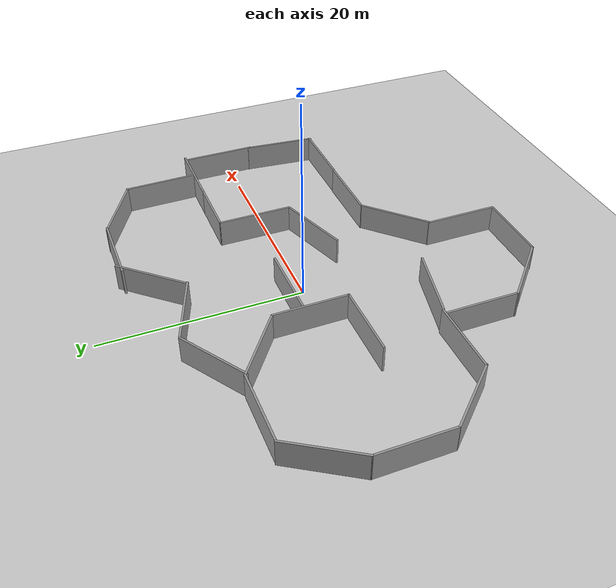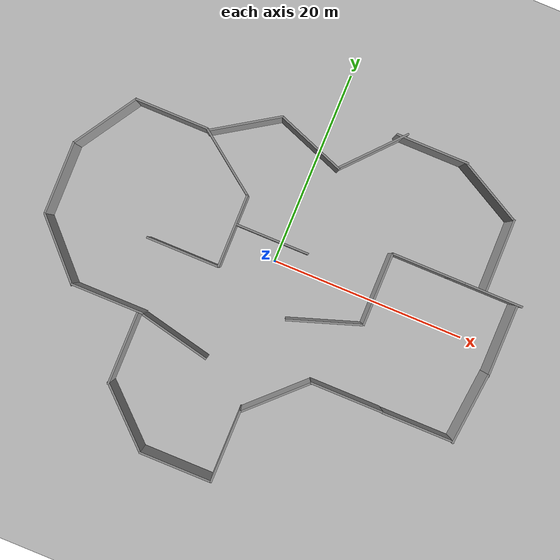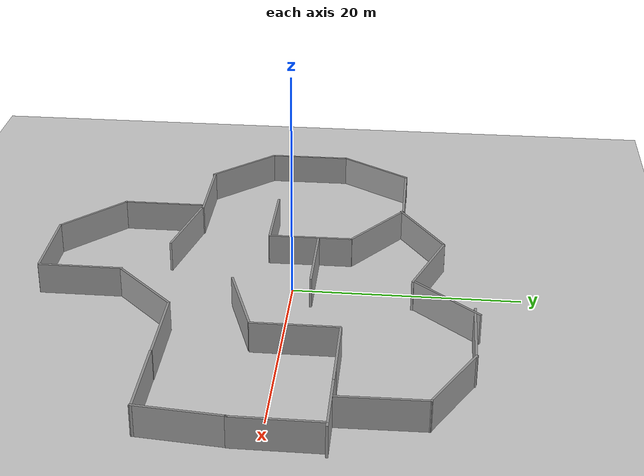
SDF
<sdf version="1.4">
 <world name="default">
  <light name="sun" type="directional">
   <pose>0 0 10 0 -0 0</pose>
   <diffuse>0.8 0.8 0.8 1</diffuse>
   <specular>0.2 0.2 0.2 1</specular>
   <attenuation>
    <range>1000</range>
    <constant>0.9</constant>
    <linear>0.01</linear>
    <quadratic>0.001</quadratic>
   </attenuation>
   <direction>-0.5 0.1 -0.9</direction>
  </light>
  <model name="ground_plane">
   <static>1</static>
   <link name="link">
    <collision name="collision">
     <geometry><plane><normal>0 0 1</normal><size>100 100</size></plane></geometry>
     <surface><friction><ode><mu>100</mu><mu2>50</mu2></ode></friction></surface>
    </collision>
    <visual name="visual">
     <cast_shadows>0</cast_shadows>
     <geometry><plane><normal>0 0 1</normal><size>100 100</size></plane></geometry>
     <material>
      <script><uri>file://media/materials/scripts/gazebo.material</uri><name>Gazebo/Grey</name></script>
     </material>
    </visual>
    <velocity_decay><linear>0</linear><angular>0</angular></velocity_decay>
   </link>
  </model>
  <physics type="ode">
   <max_step_size>0.001</max_step_size>
   <real_time_factor>1</real_time_factor>
   <real_time_update_rate>1000</real_time_update_rate>
   <gravity>0 0 -9.8</gravity>
  </physics>
  <scene><ambient>0.4 0.4 0.4 1</ambient><background>0.7 0.7 0.7 1</background><shadows>1</shadows></scene>
  <spherical_coordinates>
   <surface_model>EARTH_WGS84</surface_model>
   <latitude_deg>0</latitude_deg>
   <longitude_deg>0</longitude_deg>
   <elevation>0</elevation>
   <heading_deg>0</heading_deg>
  </spherical_coordinates>
  <model name="grey_wall">
   <static>1</static>
   <link name="link">
    <pose>0 0 1.4 0 -0 0</pose>
    <collision name="collision"><geometry><box><size>7.5 0.2 2.8</size></box></geometry></collision>
    <visual name="visual">
     <cast_shadows>0</cast_shadows>
     <geometry><box><size>7.5 0.2 2.8</size></box></geometry>
     <material>
      <script>
       <uri>model://grey_wall/materials/scripts</uri>
       <uri>model://grey_wall/materials/textures</uri>
       <name>vrc/grey_wall</name>
      </script>
     </material>
    </visual>
    <velocity_decay><linear>0</linear><angular>0</angular></velocity_decay>
   </link>
   <pose>14 5 0 0 -0 0</pose>
  </model>
  <model name="grey_wall_0">
   <static>1</static>
   <link name="link">
    <pose>0 0 1.4 0 -0 0</pose>
    <collision name="collision"><geometry><box><size>7.5 0.2 2.8</size></box></geometry></collision>
    <visual name="visual">
     <cast_shadows>0</cast_shadows>
     <geometry><box><size>7.5 0.2 2.8</size></box></geometry>
     <material>
      <script>
       <uri>model://grey_wall/materials/scripts</uri>
       <uri>model://grey_wall/materials/textures</uri>
       <name>vrc/grey_wall</name>
      </script>
     </material>
    </visual>
    <velocity_decay><linear>0</linear><angular>0</angular></velocity_decay>
   </link>
   <pose>20 5 0 0 -0 0</pose>
  </model>
  <model name="grey_wall_1">
   <static>1</static>
   <link name="link">
    <pose>0 0 1.4 0 -0 0</pose>
    <collision name="collision"><geometry><box><size>7.5 0.2 2.8</size></box></geometry></collision>
    <visual name="visual">
     <cast_shadows>0</cast_shadows>
     <geometry><box><size>7.5 0.2 2.8</size></box></geometry>
     <material>
      <script>
       <uri>model://grey_wall/materials/scripts</uri>
       <uri>model://grey_wall/materials/textures</uri>
       <name>vrc/grey_wall</name>
      </script>
     </material>
    </visual>
    <velocity_decay><linear>0</linear><angular>0</angular></velocity_decay>
   </link>
   <pose>22.8422 -5.97851 0 0 0 -1.6649</pose>
  </model>
  <model name="grey_wall_2">
   <static>1</static>
   <link name="link">
    <pose>0 0 1.4 0 -0 0</pose>
    <collision name="collision"><geometry><box><size>7.5 0.2 2.8</size></box></geometry></collision>
    <visual name="visual">
     <cast_shadows>0</cast_shadows>
     <geometry><box><size>7.5 0.2 2.8</size></box></geometry>
     <material>
      <script>
       <uri>model://grey_wall/materials/scripts</uri>
       <uri>model://grey_wall/materials/textures</uri>
       <name>vrc/grey_wall</name>
      </script>
     </material>
    </visual>
    <velocity_decay><linear>0</linear><angular>0</angular></velocity_decay>
   </link>
   <pose>23.2209 1.25195 0 0 -0 1.5708</pose>
  </model>
  <model name="grey_wall_3">
   <static>1</static>
   <link name="link">
    <pose>0 0 1.4 0 -0 0</pose>
    <collision name="collision"><geometry><box><size>7.5 0.2 2.8</size></box></geometry></collision>
    <visual name="visual">
     <cast_shadows>0</cast_shadows>
     <geometry><box><size>7.5 0.2 2.8</size></box></geometry>
     <material>
      <script>
       <uri>model://grey_wall/materials/scripts</uri>
       <uri>model://grey_wall/materials/textures</uri>
       <name>vrc/grey_wall</name>
      </script>
     </material>
    </visual>
    <velocity_decay><linear>0</linear><angular>0</angular></velocity_decay>
   </link>
   <pose>2.42388 -18.3048 0 0 -0 1.5708</pose>
  </model>
  <model name="grey_wall_4">
   <static>1</static>
   <link name="link">
    <pose>0 0 1.4 0 -0 0</pose>
    <collision name="collision"><geometry><box><size>7.5 0.2 2.8</size></box></geometry></collision>
    <visual name="visual">
     <cast_shadows>0</cast_shadows>
     <geometry><box><size>7.5 0.2 2.8</size></box></geometry>
     <material>
      <script>
       <uri>model://grey_wall/materials/scripts</uri>
       <uri>model://grey_wall/materials/textures</uri>
       <name>vrc/grey_wall</name>
      </script>
     </material>
    </visual>
    <velocity_decay><linear>0</linear><angular>0</angular></velocity_decay>
   </link>
   <pose>-10.3378 -13.3527 0 0 0 -1.5708</pose>
  </model>
  <model name="grey_wall_5">
   <static>1</static>
   <link name="link">
    <pose>0 0 1.4 0 -0 0</pose>
    <collision name="collision"><geometry><box><size>7.5 0.2 2.8</size></box></geometry></collision>
    <visual name="visual">
     <cast_shadows>0</cast_shadows>
     <geometry><box><size>7.5 0.2 2.8</size></box></geometry>
     <material>
      <script>
       <uri>model://grey_wall/materials/scripts</uri>
       <uri>model://grey_wall/materials/textures</uri>
       <name>vrc/grey_wall</name>
      </script>
     </material>
    </visual>
    <velocity_decay><linear>0</linear><angular>0</angular></velocity_decay>
   </link>
   <pose>6.64215 -3.64362 0 0 -0 0.325229</pose>
  </model>
  <model name="grey_wall_6">
   <static>1</static>
   <link name="link">
    <pose>0 0 1.4 0 -0 0</pose>
    <collision name="collision"><geometry><box><size>7.5 0.2 2.8</size></box></geometry></collision>
    <visual name="visual">
     <cast_shadows>0</cast_shadows>
     <geometry><box><size>7.5 0.2 2.8</size></box></geometry>
     <material>
      <script>
       <uri>model://grey_wall/materials/scripts</uri>
       <uri>model://grey_wall/materials/textures</uri>
       <name>vrc/grey_wall</name>
      </script>
     </material>
    </visual>
    <velocity_decay><linear>0</linear><angular>0</angular></velocity_decay>
   </link>
   <pose>11.393 -9.50134 0 0 -0 0</pose>
  </model>
  <model name="grey_wall_7">
   <static>1</static>
   <link name="link">
    <pose>0 0 1.4 0 -0 0</pose>
    <collision name="collision"><geometry><box><size>7.5 0.2 2.8</size></box></geometry></collision>
    <visual name="visual">
     <cast_shadows>0</cast_shadows>
     <geometry><box><size>7.5 0.2 2.8</size></box></geometry>
     <material>
      <script>
       <uri>model://grey_wall/materials/scripts</uri>
       <uri>model://grey_wall/materials/textures</uri>
       <name>vrc/grey_wall</name>
      </script>
     </material>
    </visual>
    <velocity_decay><linear>0</linear><angular>0</angular></velocity_decay>
   </link>
   <pose>18.8702 -9.54017 0 0 -0 0</pose>
  </model>
  <model name="grey_wall_8">
   <static>1</static>
   <link name="link">
    <pose>0 0 1.4 0 -0 0</pose>
    <collision name="collision"><geometry><box><size>7.5 0.2 2.8</size></box></geometry></collision>
    <visual name="visual">
     <cast_shadows>0</cast_shadows>
     <geometry><box><size>7.5 0.2 2.8</size></box></geometry>
     <material>
      <script>
       <uri>model://grey_wall/materials/scripts</uri>
       <uri>model://grey_wall/materials/textures</uri>
       <name>vrc/grey_wall</name>
      </script>
     </material>
    </visual>
    <velocity_decay><linear>0</linear><angular>0</angular></velocity_decay>
   </link>
   <pose>-1.00319 1.86077 0 0 -0 0</pose>
  </model>
  <model name="grey_wall_9">
   <static>1</static>
   <link name="link">
    <pose>0 0 1.4 0 -0 0</pose>
    <collision name="collision"><geometry><box><size>7.5 0.2 2.8</size></box></geometry></collision>
    <visual name="visual">
     <cast_shadows>0</cast_shadows>
     <geometry><box><size>7.5 0.2 2.8</size></box></geometry>
     <material>
      <script>
       <uri>model://grey_wall/materials/scripts</uri>
       <uri>model://grey_wall/materials/textures</uri>
       <name>vrc/grey_wall</name>
      </script>
     </material>
    </visual>
    <velocity_decay><linear>0</linear><angular>0</angular></velocity_decay>
   </link>
   <pose>5.0926 -12.1075 0 0 -0 0.774331</pose>
  </model>
  <model name="grey_wall_10">
   <static>1</static>
   <link name="link">
    <pose>0 0 1.4 0 -0 0</pose>
    <collision name="collision"><geometry><box><size>7.5 0.2 2.8</size></box></geometry></collision>
    <visual name="visual">
     <cast_shadows>0</cast_shadows>
     <geometry><box><size>7.5 0.2 2.8</size></box></geometry>
     <material>
      <script>
       <uri>model://grey_wall/materials/scripts</uri>
       <uri>model://grey_wall/materials/textures</uri>
       <name>vrc/grey_wall</name>
      </script>
     </material>
    </visual>
    <velocity_decay><linear>0</linear><angular>0</angular></velocity_decay>
   </link>
   <pose>-4.86235 1.13124 0 0 0 -1.56644</pose>
  </model>
  <model name="grey_wall_11">
   <static>1</static>
   <link name="link">
    <pose>0 0 1.4 0 -0 0</pose>
    <collision name="collision"><geometry><box><size>7.5 0.2 2.8</size></box></geometry></collision>
    <visual name="visual">
     <cast_shadows>0</cast_shadows>
     <geometry><box><size>7.5 0.2 2.8</size></box></geometry>
     <material>
      <script>
       <uri>model://grey_wall/materials/scripts</uri>
       <uri>model://grey_wall/materials/textures</uri>
       <name>vrc/grey_wall</name>
      </script>
     </material>
    </visual>
    <velocity_decay><linear>0</linear><angular>0</angular></velocity_decay>
   </link>
   <pose>10.2355 1.2711 0 0 0 -1.56834</pose>
  </model>
  <model name="grey_wall_13">
   <static>1</static>
   <link name="link">
    <pose>0 0 1.4 0 -0 0</pose>
    <collision name="collision"><geometry><box><size>7.5 0.2 2.8</size></box></geometry></collision>
    <visual name="visual">
     <cast_shadows>0</cast_shadows>
     <geometry><box><size>7.5 0.2 2.8</size></box></geometry>
     <material>
      <script>
       <uri>model://grey_wall/materials/scripts</uri>
       <uri>model://grey_wall/materials/textures</uri>
       <name>vrc/grey_wall</name>
      </script>
     </material>
    </visual>
    <velocity_decay><linear>0</linear><angular>0</angular></velocity_decay>
   </link>
   <pose>-13.5632 -9.50601 0 0 -0 0</pose>
  </model>
  <model name="grey_wall_14">
   <static>1</static>
   <link name="link">
    <pose>0 0 1.4 0 -0 0</pose>
    <collision name="collision"><geometry><box><size>7.5 0.2 2.8</size></box></geometry></collision>
    <visual name="visual">
     <cast_shadows>0</cast_shadows>
     <geometry><box><size>7.5 0.2 2.8</size></box></geometry>
     <material>
      <script>
       <uri>model://grey_wall/materials/scripts</uri>
       <uri>model://grey_wall/materials/textures</uri>
       <name>vrc/grey_wall</name>
      </script>
     </material>
    </visual>
    <velocity_decay><linear>0</linear><angular>0</angular></velocity_decay>
   </link>
   <pose>-1.33503 -21.999 0 0 -0 0</pose>
  </model>
  <model name="grey_wall_15">
   <static>1</static>
   <link name="link">
    <pose>0 0 1.4 0 -0 0</pose>
    <collision name="collision"><geometry><box><size>7.5 0.2 2.8</size></box></geometry></collision>
    <visual name="visual">
     <cast_shadows>0</cast_shadows>
     <geometry><box><size>7.5 0.2 2.8</size></box></geometry>
     <material>
      <script>
       <uri>model://grey_wall/materials/scripts</uri>
       <uri>model://grey_wall/materials/textures</uri>
       <name>vrc/grey_wall</name>
      </script>
     </material>
    </visual>
    <velocity_decay><linear>0</linear><angular>0</angular></velocity_decay>
   </link>
   <pose>-8.55291 -2.57837 0 0 -0 0</pose>
  </model>
  <model name="grey_wall_16">
   <static>1</static>
   <link name="link">
    <pose>0 0 1.4 0 -0 0</pose>
    <collision name="collision"><geometry><box><size>7.5 0.2 2.8</size></box></geometry></collision>
    <visual name="visual">
     <cast_shadows>0</cast_shadows>
     <geometry><box><size>7.5 0.2 2.8</size></box></geometry>
     <material>
      <script>
       <uri>model://grey_wall/materials/scripts</uri>
       <uri>model://grey_wall/materials/textures</uri>
       <name>vrc/grey_wall</name>
      </script>
     </material>
    </visual>
    <velocity_decay><linear>0</linear><angular>0</angular></velocity_decay>
   </link>
   <pose>-7.69861 -19.4421 0 0 0 -0.754975</pose>
  </model>
  <model name="grey_wall_17">
   <static>1</static>
   <link name="link">
    <pose>0 0 1.4 0 -0 0</pose>
    <collision name="collision"><geometry><box><size>7.5 0.2 2.8</size></box></geometry></collision>
    <visual name="visual">
     <cast_shadows>0</cast_shadows>
     <geometry><box><size>7.5 0.2 2.8</size></box></geometry>
     <material>
      <script>
       <uri>model://grey_wall/materials/scripts</uri>
       <uri>model://grey_wall/materials/textures</uri>
       <name>vrc/grey_wall</name>
      </script>
     </material>
    </visual>
    <velocity_decay><linear>0</linear><angular>0</angular></velocity_decay>
   </link>
   <pose>-7.86252 7.05554 0 0 0 -0.637249</pose>
  </model>
  <model name="grey_wall_18">
   <static>1</static>
   <link name="link">
    <pose>0 0 1.4 0 -0 0</pose>
    <collision name="collision"><geometry><box><size>7.5 0.2 2.8</size></box></geometry></collision>
    <visual name="visual">
     <cast_shadows>0</cast_shadows>
     <geometry><box><size>7.5 0.2 2.8</size></box></geometry>
     <material>
      <script>
       <uri>model://grey_wall/materials/scripts</uri>
       <uri>model://grey_wall/materials/textures</uri>
       <name>vrc/grey_wall</name>
      </script>
     </material>
    </visual>
    <velocity_decay><linear>0</linear><angular>0</angular></velocity_decay>
   </link>
   <pose>-19.7217 -6.90276 0 0 0 -0.818653</pose>
  </model>
  <model name="grey_wall_19">
   <static>1</static>
   <link name="link">
    <pose>0 0 1.4 0 -0 0</pose>
    <collision name="collision"><geometry><box><size>7.5 0.2 2.8</size></box></geometry></collision>
    <visual name="visual">
     <cast_shadows>0</cast_shadows>
     <geometry><box><size>7.5 0.2 2.8</size></box></geometry>
     <material>
      <script>
       <uri>model://grey_wall/materials/scripts</uri>
       <uri>model://grey_wall/materials/textures</uri>
       <name>vrc/grey_wall</name>
      </script>
     </material>
    </visual>
    <velocity_decay><linear>0</linear><angular>0</angular></velocity_decay>
   </link>
   <pose>-22.2508 -0.507165 0 0 0 -1.56764</pose>
  </model>
  <model name="grey_wall_20">
   <static>1</static>
   <link name="link">
    <pose>0 0 1.4 0 -0 0</pose>
    <collision name="collision"><geometry><box><size>7.5 0.2 2.8</size></box></geometry></collision>
    <visual name="visual">
     <cast_shadows>0</cast_shadows>
     <geometry><box><size>7.5 0.2 2.8</size></box></geometry>
     <material>
      <script>
       <uri>model://grey_wall/materials/scripts</uri>
       <uri>model://grey_wall/materials/textures</uri>
       <name>vrc/grey_wall</name>
      </script>
     </material>
    </visual>
    <velocity_decay><linear>0</linear><angular>0</angular></velocity_decay>
   </link>
   <pose>-14.5997 9.32559 0 0 -0 0</pose>
  </model>
  <model name="grey_wall_21">
   <static>1</static>
   <link name="link">
    <pose>0 0 1.4 0 -0 0</pose>
    <collision name="collision"><geometry><box><size>7.5 0.2 2.8</size></box></geometry></collision>
    <visual name="visual">
     <cast_shadows>0</cast_shadows>
     <geometry><box><size>7.5 0.2 2.8</size></box></geometry>
     <material>
      <script>
       <uri>model://grey_wall/materials/scripts</uri>
       <uri>model://grey_wall/materials/textures</uri>
       <name>vrc/grey_wall</name>
      </script>
     </material>
    </visual>
    <velocity_decay><linear>0</linear><angular>0</angular></velocity_decay>
   </link>
   <pose>-20.2814 6.25721 0 0 0 -2.14153</pose>
  </model>
  <model name="grey_wall_22">
   <static>1</static>
   <link name="link">
    <pose>0 0 1.4 0 -0 0</pose>
    <collision name="collision"><geometry><box><size>7.5 0.2 2.8</size></box></geometry></collision>
    <visual name="visual">
     <cast_shadows>0</cast_shadows>
     <geometry><box><size>7.5 0.2 2.8</size></box></geometry>
     <material>
      <script>
       <uri>model://grey_wall/materials/scripts</uri>
       <uri>model://grey_wall/materials/textures</uri>
       <name>vrc/grey_wall</name>
      </script>
     </material>
    </visual>
    <velocity_decay><linear>0</linear><angular>0</angular></velocity_decay>
   </link>
   <pose>-6.15487 -10.4263 0 0 0 -0.221816</pose>
  </model>
  <model name="grey_wall_23">
   <static>1</static>
   <link name="link">
    <pose>0 0 1.4 0 -0 0</pose>
    <collision name="collision"><geometry><box><size>7.5 0.2 2.8</size></box></geometry></collision>
    <visual name="visual">
     <cast_shadows>0</cast_shadows>
     <geometry><box><size>7.5 0.2 2.8</size></box></geometry>
     <material>
      <script>
       <uri>model://grey_wall/materials/scripts</uri>
       <uri>model://grey_wall/materials/textures</uri>
       <name>vrc/grey_wall</name>
      </script>
     </material>
    </visual>
    <velocity_decay><linear>0</linear><angular>0</angular></velocity_decay>
   </link>
   <pose>4.74851 13.4642 0 0 -0 0.83811</pose>
  </model>
  <model name="grey_wall_24">
   <static>1</static>
   <link name="link">
    <pose>0 0 1.4 0 -0 0</pose>
    <collision name="collision"><geometry><box><size>7.5 0.2 2.8</size></box></geometry></collision>
    <visual name="visual">
     <cast_shadows>0</cast_shadows>
     <geometry><box><size>7.5 0.2 2.8</size></box></geometry>
     <material>
      <script>
       <uri>model://grey_wall/materials/scripts</uri>
       <uri>model://grey_wall/materials/textures</uri>
       <name>vrc/grey_wall</name>
      </script>
     </material>
    </visual>
    <velocity_decay><linear>0</linear><angular>0</angular></velocity_decay>
   </link>
   <pose>9.92917 15.789 0 0 -0 0</pose>
  </model>
  <model name="grey_wall_25">
   <static>1</static>
   <link name="link">
    <pose>0 0 1.4 0 -0 0</pose>
    <collision name="collision"><geometry><box><size>7.5 0.2 2.8</size></box></geometry></collision>
    <visual name="visual">
     <cast_shadows>0</cast_shadows>
     <geometry><box><size>7.5 0.2 2.8</size></box></geometry>
     <material>
      <script>
       <uri>model://grey_wall/materials/scripts</uri>
       <uri>model://grey_wall/materials/textures</uri>
       <name>vrc/grey_wall</name>
      </script>
     </material>
    </visual>
    <velocity_decay><linear>0</linear><angular>0</angular></velocity_decay>
   </link>
   <pose>-7.74195 11.1419 0 0 -0 0.572403</pose>
  </model>
  <model name="grey_wall_26">
   <static>1</static>
   <link name="link">
    <pose>0 0 1.4 0 -0 0</pose>
    <collision name="collision"><geometry><box><size>7.5 0.2 2.8</size></box></geometry></collision>
    <visual name="visual">
     <cast_shadows>0</cast_shadows>
     <geometry><box><size>7.5 0.2 2.8</size></box></geometry>
     <material>
      <script>
       <uri>model://grey_wall/materials/scripts</uri>
       <uri>model://grey_wall/materials/textures</uri>
       <name>vrc/grey_wall</name>
      </script>
     </material>
    </visual>
    <velocity_decay><linear>0</linear><angular>0</angular></velocity_decay>
   </link>
   <pose>19.8614 8.76158 0 0 0 -1.55499</pose>
  </model>
  <model name="grey_wall_27">
   <static>1</static>
   <link name="link">
    <pose>0 0 1.4 0 -0 0</pose>
    <collision name="collision"><geometry><box><size>7.5 0.2 2.8</size></box></geometry></collision>
    <visual name="visual">
     <cast_shadows>0</cast_shadows>
     <geometry><box><size>7.5 0.2 2.8</size></box></geometry>
     <material>
      <script>
       <uri>model://grey_wall/materials/scripts</uri>
       <uri>model://grey_wall/materials/textures</uri>
       <name>vrc/grey_wall</name>
      </script>
     </material>
    </visual>
    <velocity_decay><linear>0</linear><angular>0</angular></velocity_decay>
   </link>
   <pose>16.587 14.0938 0 0 0 -0.489171</pose>
  </model>
  <model name="grey_wall_29">
   <static>1</static>
   <link name="link">
    <pose>0 0 1.4 0 -0 0</pose>
    <collision name="collision"><geometry><box><size>7.5 0.2 2.8</size></box></geometry></collision>
    <visual name="visual">
     <cast_shadows>0</cast_shadows>
     <geometry><box><size>7.5 0.2 2.8</size></box></geometry>
     <material>
      <script>
       <uri>model://grey_wall/materials/scripts</uri>
       <uri>model://grey_wall/materials/textures</uri>
       <name>vrc/grey_wall</name>
      </script>
     </material>
    </visual>
    <velocity_decay><linear>0</linear><angular>0</angular></velocity_decay>
   </link>
   <pose>-1.14014 11.8495 0 0 -0 2.7856</pose>
  </model>
 </world>
</sdf>
